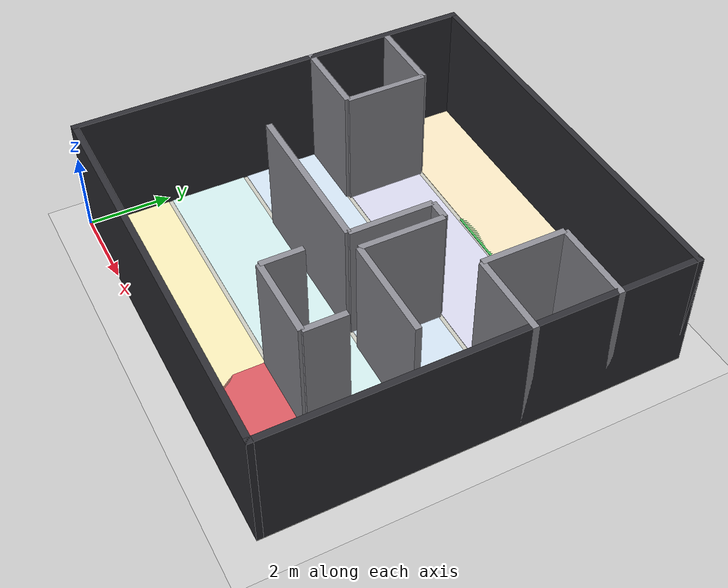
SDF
<sdf version="1.6">
 <world name="competition_course">
  <physics name="default_physics" type="ode">
   <max_step_size>0.001</max_step_size>
   <real_time_factor>1</real_time_factor>
   <real_time_update_rate>1000</real_time_update_rate>
  </physics>
  <scene>
   <ambient>0.45 0.45 0.45 1</ambient>
   <background>0.72 0.75 0.78 1</background>
   <shadows>true</shadows>
  </scene>
  <include><uri>model://sun</uri></include>
  <include><uri>model://ground_plane</uri></include>
  <model name="course_floor">
   <static>true</static>
   <pose>5 5 -0.03 0 0 0</pose>
   <link name="link">
    <collision name="collision"><geometry><box><size>10 10 .05</size></box></geometry></collision>
    <visual name="visual">
     <geometry><box><size>10 10 .05</size></box></geometry>
     <material><ambient>.78 .78 .74 1</ambient><diffuse>.78 .78 .74 1</diffuse></material>
    </visual>
   </link>
  </model>
  <model name="region_5_floor">
   <static>true</static>
   <pose>5 1 0.006 0 0 0</pose>
   <link name="link">
    <visual name="visual">
     <geometry><box><size>9.7 1.9 0.012</size></box></geometry>
     <material><ambient>0.96 0.92 0.72 1</ambient><diffuse>0.96 0.92 0.72 1</diffuse></material>
    </visual>
   </link>
  </model>
  <model name="region_4_floor">
   <static>true</static>
   <pose>5 3 0.006 0 0 0</pose>
   <link name="link">
    <visual name="visual">
     <geometry><box><size>9.7 1.9 0.012</size></box></geometry>
     <material><ambient>0.82 0.92 0.92 1</ambient><diffuse>0.82 0.92 0.92 1</diffuse></material>
    </visual>
   </link>
  </model>
  <model name="region_3_floor">
   <static>true</static>
   <pose>5 5 0.006 0 0 0</pose>
   <link name="link">
    <visual name="visual">
     <geometry><box><size>9.7 1.9 0.012</size></box></geometry>
     <material><ambient>0.82 0.88 0.94 1</ambient><diffuse>0.82 0.88 0.94 1</diffuse></material>
    </visual>
   </link>
  </model>
  <model name="region_2_floor">
   <static>true</static>
   <pose>5 7 0.006 0 0 0</pose>
   <link name="link">
    <visual name="visual">
     <geometry><box><size>9.7 1.9 0.012</size></box></geometry>
     <material><ambient>0.84 0.84 0.92 1</ambient><diffuse>0.84 0.84 0.92 1</diffuse></material>
    </visual>
   </link>
  </model>
  <model name="region_1_floor">
   <static>true</static>
   <pose>5 9 0.006 0 0 0</pose>
   <link name="link">
    <visual name="visual">
     <geometry><box><size>9.7 1.9 0.012</size></box></geometry>
     <material><ambient>0.96 0.90 0.76 1</ambient><diffuse>0.96 0.90 0.76 1</diffuse></material>
    </visual>
   </link>
  </model>
  <model name="boundary_top">
   <static>true</static>
   <pose>5 0.075 1.5 0 0 0</pose>
   <link name="link">
    <collision name="collision"><geometry><box><size>10 0.15 3</size></box></geometry></collision>
    <visual name="visual">
     <geometry><box><size>10 0.15 3</size></box></geometry>
     <material><ambient>.18 .18 .20 1</ambient><diffuse>.18 .18 .20 1</diffuse></material>
    </visual>
   </link>
  </model>
  <model name="boundary_bottom">
   <static>true</static>
   <pose>5 9.925 1.5 0 0 0</pose>
   <link name="link">
    <collision name="collision"><geometry><box><size>10 0.15 3</size></box></geometry></collision>
    <visual name="visual">
     <geometry><box><size>10 0.15 3</size></box></geometry>
     <material><ambient>.18 .18 .20 1</ambient><diffuse>.18 .18 .20 1</diffuse></material>
    </visual>
   </link>
  </model>
  <model name="boundary_left">
   <static>true</static>
   <pose>0.075 5 1.5 0 0 0</pose>
   <link name="link">
    <collision name="collision"><geometry><box><size>0.15 10 3</size></box></geometry></collision>
    <visual name="visual">
     <geometry><box><size>0.15 10 3</size></box></geometry>
     <material><ambient>.18 .18 .20 1</ambient><diffuse>.18 .18 .20 1</diffuse></material>
    </visual>
   </link>
  </model>
  <model name="boundary_right">
   <static>true</static>
   <pose>9.925 5 1.5 0 0 0</pose>
   <link name="link">
    <collision name="collision"><geometry><box><size>0.15 10 3</size></box></geometry></collision>
    <visual name="visual">
     <geometry><box><size>0.15 10 3</size></box></geometry>
     <material><ambient>.18 .18 .20 1</ambient><diffuse>.18 .18 .20 1</diffuse></material>
    </visual>
   </link>
  </model>
  <model name="wall_top_u_horizontal">
   <static>true</static>
   <pose>7 2 1.5 0 0 0</pose>
   <link name="link">
    <collision name="collision"><geometry><box><size>2 0.15 3</size></box></geometry></collision>
    <visual name="visual">
     <geometry><box><size>2 0.15 3</size></box></geometry>
     <material><ambient>.55 .55 .58 1</ambient><diffuse>.55 .55 .58 1</diffuse></material>
    </visual>
   </link>
  </model>
  <model name="wall_top_u_left">
   <static>true</static>
   <pose>8 2.5 1.5 0 0 0</pose>
   <link name="link">
    <collision name="collision"><geometry><box><size>0.15 1 3</size></box></geometry></collision>
    <visual name="visual">
     <geometry><box><size>0.15 1 3</size></box></geometry>
     <material><ambient>.55 .55 .58 1</ambient><diffuse>.55 .55 .58 1</diffuse></material>
    </visual>
   </link>
  </model>
  <model name="wall_top_u_right">
   <static>true</static>
   <pose>6 2.5 1.5 0 0 0</pose>
   <link name="link">
    <collision name="collision"><geometry><box><size>0.15 1 3</size></box></geometry></collision>
    <visual name="visual">
     <geometry><box><size>0.15 1 3</size></box></geometry>
     <material><ambient>.55 .55 .58 1</ambient><diffuse>.55 .55 .58 1</diffuse></material>
    </visual>
   </link>
  </model>
  <model name="wall_middle_left_horizontal">
   <static>true</static>
   <pose>7.75 4 1.5 0 0 0</pose>
   <link name="link">
    <collision name="collision"><geometry><box><size>2.5 0.15 3</size></box></geometry></collision>
    <visual name="visual">
     <geometry><box><size>2.5 0.15 3</size></box></geometry>
     <material><ambient>.55 .55 .58 1</ambient><diffuse>.55 .55 .58 1</diffuse></material>
    </visual>
   </link>
  </model>
  <model name="wall_middle_left_leg">
   <static>true</static>
   <pose>6.5 5 1.5 0 0 0</pose>
   <link name="link">
    <collision name="collision"><geometry><box><size>0.15 2 3</size></box></geometry></collision>
    <visual name="visual">
     <geometry><box><size>0.15 2 3</size></box></geometry>
     <material><ambient>.55 .55 .58 1</ambient><diffuse>.55 .55 .58 1</diffuse></material>
    </visual>
   </link>
  </model>
  <model name="wall_middle_bottom">
   <static>true</static>
   <pose>6.25 6 1.5 0 0 0</pose>
   <link name="link">
    <collision name="collision"><geometry><box><size>0.5 0.15 3</size></box></geometry></collision>
    <visual name="visual">
     <geometry><box><size>0.5 0.15 3</size></box></geometry>
     <material><ambient>.55 .55 .58 1</ambient><diffuse>.55 .55 .58 1</diffuse></material>
    </visual>
   </link>
  </model>
  <model name="wall_middle_right_leg">
   <static>true</static>
   <pose>6 5 1.5 0 0 0</pose>
   <link name="link">
    <collision name="collision"><geometry><box><size>0.15 2 3</size></box></geometry></collision>
    <visual name="visual">
     <geometry><box><size>0.15 2 3</size></box></geometry>
     <material><ambient>.55 .55 .58 1</ambient><diffuse>.55 .55 .58 1</diffuse></material>
    </visual>
   </link>
  </model>
  <model name="wall_middle_right_horizontal">
   <static>true</static>
   <pose>4 4 1.5 0 0 0</pose>
   <link name="link">
    <collision name="collision"><geometry><box><size>4 0.15 3</size></box></geometry></collision>
    <visual name="visual">
     <geometry><box><size>4 0.15 3</size></box></geometry>
     <material><ambient>.55 .55 .58 1</ambient><diffuse>.55 .55 .58 1</diffuse></material>
    </visual>
   </link>
  </model>
  <model name="wall_lower_left_top">
   <static>true</static>
   <pose>1 6 1.5 0 0 0</pose>
   <link name="link">
    <collision name="collision"><geometry><box><size>2 0.15 3</size></box></geometry></collision>
    <visual name="visual">
     <geometry><box><size>2 0.15 3</size></box></geometry>
     <material><ambient>.55 .55 .58 1</ambient><diffuse>.55 .55 .58 1</diffuse></material>
    </visual>
   </link>
  </model>
  <model name="wall_lower_left_leg">
   <static>true</static>
   <pose>2 7 1.5 0 0 0</pose>
   <link name="link">
    <collision name="collision"><geometry><box><size>0.15 2 3</size></box></geometry></collision>
    <visual name="visual">
     <geometry><box><size>0.15 2 3</size></box></geometry>
     <material><ambient>.55 .55 .58 1</ambient><diffuse>.55 .55 .58 1</diffuse></material>
    </visual>
   </link>
  </model>
  <model name="wall_lower_left_bottom">
   <static>true</static>
   <pose>1 8 1.5 0 0 0</pose>
   <link name="link">
    <collision name="collision"><geometry><box><size>2 0.15 3</size></box></geometry></collision>
    <visual name="visual">
     <geometry><box><size>2 0.15 3</size></box></geometry>
     <material><ambient>.55 .55 .58 1</ambient><diffuse>.55 .55 .58 1</diffuse></material>
    </visual>
   </link>
  </model>
  <model name="wall_lower_right_top">
   <static>true</static>
   <pose>9 6 1.5 0 0 0</pose>
   <link name="link">
    <collision name="collision"><geometry><box><size>2 0.15 3</size></box></geometry></collision>
    <visual name="visual">
     <geometry><box><size>2 0.15 3</size></box></geometry>
     <material><ambient>.55 .55 .58 1</ambient><diffuse>.55 .55 .58 1</diffuse></material>
    </visual>
   </link>
  </model>
  <model name="wall_lower_right_leg">
   <static>true</static>
   <pose>8 7 1.5 0 0 0</pose>
   <link name="link">
    <collision name="collision"><geometry><box><size>0.15 2 3</size></box></geometry></collision>
    <visual name="visual">
     <geometry><box><size>0.15 2 3</size></box></geometry>
     <material><ambient>.55 .55 .58 1</ambient><diffuse>.55 .55 .58 1</diffuse></material>
    </visual>
   </link>
  </model>
  <model name="wall_lower_right_bottom">
   <static>true</static>
   <pose>9 8 1.5 0 0 0</pose>
   <link name="link">
    <collision name="collision"><geometry><box><size>2 0.15 3</size></box></geometry></collision>
    <visual name="visual">
     <geometry><box><size>2 0.15 3</size></box></geometry>
     <material><ambient>.55 .55 .58 1</ambient><diffuse>.55 .55 .58 1</diffuse></material>
    </visual>
   </link>
  </model>
  <model name="takeoff_zone">
   <static>true</static>
   <pose>5 9 0.006 0 0 0</pose>
   <link name="link">
    <visual name="visual">
     <geometry><box><size>2 2 0.012</size></box></geometry>
     <material><ambient>0.25 0.75 0.35 1</ambient><diffuse>0.25 0.75 0.35 1</diffuse></material>
    </visual>
   </link>
  </model>
  <model name="landing_zone">
   <static>true</static>
   <pose>7 1 0.006 0 0 0</pose>
   <link name="link">
    <visual name="visual">
     <geometry><box><size>2 2 0.012</size></box></geometry>
     <material><ambient>0.85 0.35 0.38 1</ambient><diffuse>0.85 0.35 0.38 1</diffuse></material>
    </visual>
   </link>
  </model>
 </world>
</sdf>
